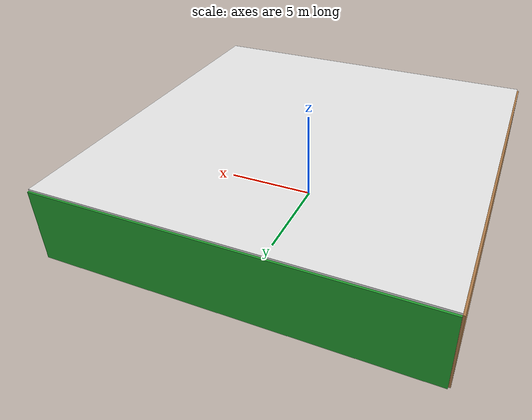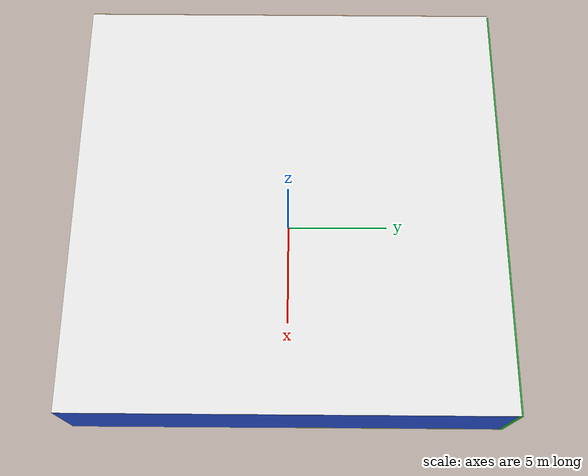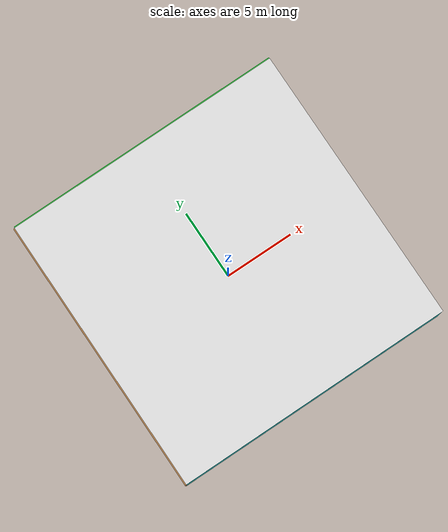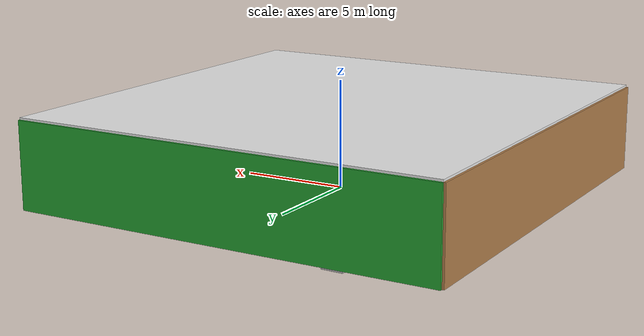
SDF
<sdf version="1.4">
 <world name="default">
  <physics type="ode">
   <max_step_size>0.001</max_step_size>
   <real_time_factor>1</real_time_factor>
   <real_time_update_rate>1000</real_time_update_rate>
   <gravity>0 0 -9.8</gravity>
  </physics>
  <scene><ambient>0.4 0.4 0.4 1</ambient><background>0.7 0.7 0.7 1</background><shadows>1</shadows></scene>
  <model name="Surrounding">
   <static>1</static>
   <link name="Ceiling">
    <collision name="Ceiling_Collision"><geometry><box><size>20 20 0.1</size></box></geometry></collision>
    <visual name="Ceiling_Visual">
     <geometry><box><size>20 20 0.1</size></box></geometry>
     <material>
      <script><uri>file://media/materials/scripts/gazebo.material</uri><name>Gazebo/White</name></script>
     </material>
    </visual>
    <pose>0 0 4.05 0 0 0</pose>
   </link>
   <link name="Wall_South">
    <collision name="Wall_South_Collision">
     <geometry><box><size>20 0 4</size></box></geometry>
     <pose>0 0 2 0 -0 0</pose>
    </collision>
    <visual name="Wall_South_Visual">
     <pose>0 0 2 0 -0 0</pose>
     <geometry><box><size>20 0 4</size></box></geometry>
     <material>
      <script><uri>file://media/materials/scripts/gazebo.material</uri><name>Gazebo/TurquoiseGlow</name></script>
     </material>
    </visual>
    <velocity_decay><linear>0</linear><angular>0</angular></velocity_decay>
    <pose>0 -10 0 0 -0 0</pose>
   </link>
   <link name="Wall_East">
    <collision name="Wall_21_Collision">
     <geometry><box><size>20 0 4</size></box></geometry>
     <pose>0 0 2 0 -0 0</pose>
    </collision>
    <visual name="Wall_21_Visual">
     <pose>0 0 2 0 -0 0</pose>
     <geometry><box><size>20 0 4</size></box></geometry>
     <material>
      <script><uri>file://media/materials/scripts/gazebo.material</uri><name>Gazebo/Blue</name></script>
     </material>
    </visual>
    <velocity_decay><linear>0</linear><angular>0</angular></velocity_decay>
    <pose>10 0 0 0 -0 1.5708</pose>
   </link>
   <link name="Wall_North">
    <collision name="Wall_22_Collision">
     <geometry><box><size>20 0.2 4</size></box></geometry>
     <pose>0 0 2 0 -0 0</pose>
    </collision>
    <visual name="Wall_22_Visual">
     <pose>0 0 2 0 -0 0</pose>
     <geometry><box><size>20 0.2 4</size></box></geometry>
     <material>
      <script><uri>file://media/materials/scripts/gazebo.material</uri><name>Gazebo/Green</name></script>
     </material>
    </visual>
    <velocity_decay><linear>0</linear><angular>0</angular></velocity_decay>
    <pose>0 10 0 0 -0 0</pose>
   </link>
   <link name="Wall_West">
    <collision name="Wall_23_Collision">
     <geometry><box><size>20 0.2 4</size></box></geometry>
     <pose>0 0 2 0 -0 0</pose>
    </collision>
    <visual name="Wall_23_Visual">
     <pose>0 0 2 0 -0 0</pose>
     <geometry><box><size>20 0.2 4</size></box></geometry>
     <material>
      <script><uri>file://media/materials/scripts/gazebo.material</uri><name>Gazebo/WoodPallet</name></script>
     </material>
    </visual>
    <velocity_decay><linear>0</linear><angular>0</angular></velocity_decay>
    <pose>-10 0 0 0 0 -1.5708</pose>
   </link>
   <link name="Ground_link">
    <collision name="collision">
     <pose>0 0 .05 0 -0 0</pose>
     <geometry><box><size>20 20 0.1</size></box></geometry>
    </collision>
    <visual name="visual">
     <pose>0 0 .05 0 -0 0</pose>
     <geometry><box><size>20 20 0.1</size></box></geometry>
     <material>
      <script><uri>file://media/materials/scripts/gazebo.material</uri><name>Gazebo/Yellow</name></script>
     </material>
    </visual>
   </link>
   <static>1</static>
  </model>
  <spherical_coordinates>
   <surface_model>EARTH_WGS84</surface_model>
   <latitude_deg>0</latitude_deg>
   <longitude_deg>0</longitude_deg>
   <elevation>0</elevation>
   <heading_deg>0</heading_deg>
  </spherical_coordinates>
  <light name="lightball_0" type="diffuse">
   <diffuse>0.8 0.8 0.8 1</diffuse>
   <specular>0.2 0.2 0.2 1</specular>
   <attenuation>
    <range>100</range>
    <constant>0.7</constant>
    <linear>0.01</linear>
    <quadratic>0.001</quadratic>
   </attenuation>
   <direction>-0.5 0.1 -0.9</direction>
   <pose>-3.88722219858 -6.5315693998 1.63107794502 0 0 0</pose>
  </light>
  <light name="lightball_1" type="diffuse">
   <diffuse>0.8 0.8 0.8 1</diffuse>
   <specular>0.2 0.2 0.2 1</specular>
   <attenuation>
    <range>100</range>
    <constant>0.7</constant>
    <linear>0.01</linear>
    <quadratic>0.001</quadratic>
   </attenuation>
   <direction>-0.5 0.1 -0.9</direction>
   <pose>-8.23097935385 -2.60913786617 1.13943941932 0 0 0</pose>
  </light>
  <light name="lightball_2" type="diffuse">
   <diffuse>0.8 0.8 0.8 1</diffuse>
   <specular>0.2 0.2 0.2 1</specular>
   <attenuation>
    <range>100</range>
    <constant>0.7</constant>
    <linear>0.01</linear>
    <quadratic>0.001</quadratic>
   </attenuation>
   <direction>-0.5 0.1 -0.9</direction>
   <pose>-3.55734389306 -7.58928140078 3.76022208137 0 0 0</pose>
  </light>
  <light name="lightball_3" type="diffuse">
   <diffuse>0.8 0.8 0.8 1</diffuse>
   <specular>0.2 0.2 0.2 1</specular>
   <attenuation>
    <range>100</range>
    <constant>0.7</constant>
    <linear>0.01</linear>
    <quadratic>0.001</quadratic>
   </attenuation>
   <direction>-0.5 0.1 -0.9</direction>
   <pose>-7.17427061067 2.19996140409 0.623505345992 0 0 0</pose>
  </light>
  <light name="lightball_4" type="diffuse">
   <diffuse>0.8 0.8 0.8 1</diffuse>
   <specular>0.2 0.2 0.2 1</specular>
   <attenuation>
    <range>100</range>
    <constant>0.7</constant>
    <linear>0.01</linear>
    <quadratic>0.001</quadratic>
   </attenuation>
   <direction>-0.5 0.1 -0.9</direction>
   <pose>-8.75523498563 -3.24816698868 3.28929953821 0 0 0</pose>
  </light>
  <light name="lightball_5" type="diffuse">
   <diffuse>0.8 0.8 0.8 1</diffuse>
   <specular>0.2 0.2 0.2 1</specular>
   <attenuation>
    <range>100</range>
    <constant>0.7</constant>
    <linear>0.01</linear>
    <quadratic>0.001</quadratic>
   </attenuation>
   <direction>-0.5 0.1 -0.9</direction>
   <pose>5.07022786073 -2.10813825873 1.23658434839 0 0 0</pose>
  </light>
  <light name="lightball_6" type="diffuse">
   <diffuse>0.8 0.8 0.8 1</diffuse>
   <specular>0.2 0.2 0.2 1</specular>
   <attenuation>
    <range>100</range>
    <constant>0.7</constant>
    <linear>0.01</linear>
    <quadratic>0.001</quadratic>
   </attenuation>
   <direction>-0.5 0.1 -0.9</direction>
   <pose>6.36210126663 4.40048519354 0.628059957882 0 0 0</pose>
  </light>
  <light name="lightball_7" type="diffuse">
   <diffuse>0.8 0.8 0.8 1</diffuse>
   <specular>0.2 0.2 0.2 1</specular>
   <attenuation>
    <range>100</range>
    <constant>0.7</constant>
    <linear>0.01</linear>
    <quadratic>0.001</quadratic>
   </attenuation>
   <direction>-0.5 0.1 -0.9</direction>
   <pose>-4.73407268727 0.929961220434 3.20418013856 0 0 0</pose>
  </light>
  <light name="lightball_8" type="diffuse">
   <diffuse>0.8 0.8 0.8 1</diffuse>
   <specular>0.2 0.2 0.2 1</specular>
   <attenuation>
    <range>100</range>
    <constant>0.7</constant>
    <linear>0.01</linear>
    <quadratic>0.001</quadratic>
   </attenuation>
   <direction>-0.5 0.1 -0.9</direction>
   <pose>-6.47356999139 -7.42653297091 1.36591871655 0 0 0</pose>
  </light>
  <include><uri>model://table</uri><pose>-4.77833895523 0.976718285036 0 0 0 2.60712222308</pose></include>
  <include>
   <uri>model://textured_shapes</uri>
   <pose>-4.87552046809 7.02147100975 0 0 0 3.1212507897</pose>
  </include>
  <include>
   <uri>model://construction_cone</uri>
   <pose>0.736983328862 -7.74430813044 0 0 0 0.677217549557</pose>
  </include>
  <include><uri>model://cabinet</uri><pose>1.10687424251 -5.07407914876 0 0 0 0.280234377804</pose></include>
  <include><uri>model://cabinet</uri><pose>1.51327986307 -0.756793616975 0 0 0 2.95196398691</pose></include>
  <include><uri>model://table</uri><pose>1.18096958549 4.14490454903 0 0 0 1.38503612152</pose></include>
 </world>
</sdf>

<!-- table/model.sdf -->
<sdf version="1.5">
  <model name="table">
    <static>true</static>
    <link name="link">
      <collision name="surface">
        <pose>0 0 1.0 0 0 0</pose>
        <geometry>
          <box>
            <size>1.5 0.8 0.03</size>
          </box>
        </geometry>
        <surface>
          <friction>
            <ode>
              <mu>0.6</mu>
              <mu2>0.6</mu2>
            </ode>
          </friction>
        </surface>
      </collision>
      <visual name="visual1">
        <pose>0 0 1.0 0 0 0</pose>
        <geometry>
          <box>
            <size>1.5 0.8 0.03</size>
          </box>
        </geometry>
        <material>
          <script>
            <uri>model://media/materials/scripts/gazebo.material</uri>
            <name>Gazebo/Wood</name>
          </script>
        </material>
      </visual>
      <collision name="front_left_leg">
        <pose>0.68 0.38 0.5 0 0 0</pose>
        <geometry>
          <cylinder>
            <radius>0.02</radius>
            <length>1.0</length>
          </cylinder>
        </geometry>
      </collision>
      <visual name="front_left_leg">
        <pose>0.68 0.38 0.5 0 0 0</pose>
        <geometry>
          <cylinder>
            <radius>0.02</radius>
            <length>1.0</length>
          </cylinder>
        </geometry>
        <material>
          <script>
            <uri>model://media/materials/scripts/gazebo.material</uri>
            <name>Gazebo/Grey</name>
          </script>
        </material>
      </visual>
      <collision name="front_right_leg">
        <pose>0.68 -0.38 0.5 0 0 0</pose>
        <geometry>
          <cylinder>
            <radius>0.02</radius>
            <length>1.0</length>
          </cylinder>
        </geometry>
      </collision>
      <visual name="front_right_leg">
        <pose>0.68 -0.38 0.5 0 0 0</pose>
        <geometry>
          <cylinder>
            <radius>0.02</radius>
            <length>1.0</length>
          </cylinder>
        </geometry>
        <material>
          <script>
            <uri>model://media/materials/scripts/gazebo.material</uri>
            <name>Gazebo/Grey</name>
          </script>
        </material>
      </visual>
      <collision name="back_right_leg">
        <pose>-0.68 -0.38 0.5 0 0 0</pose>
        <geometry>
          <cylinder>
            <radius>0.02</radius>
            <length>1.0</length>
          </cylinder>
        </geometry>
      </collision>
      <visual name="back_right_leg">
        <pose>-0.68 -0.38 0.5 0 0 0</pose>
        <geometry>
          <cylinder>
            <radius>0.02</radius>
            <length>1.0</length>
          </cylinder>
        </geometry>
        <material>
          <script>
            <uri>model://media/materials/scripts/gazebo.material</uri>
            <name>Gazebo/Grey</name>
          </script>
        </material>
      </visual>
      <collision name="back_left_leg">
        <pose>-0.68 0.38 0.5 0 0 0</pose>
        <geometry>
          <cylinder>
            <radius>0.02</radius>
            <length>1.0</length>
          </cylinder>
        </geometry>
      </collision>
      <visual name="back_left_leg">
        <pose>-0.68 0.38 0.5 0 0 0</pose>
        <geometry>
          <cylinder>
            <radius>0.02</radius>
            <length>1.0</length>
          </cylinder>
        </geometry>
        <material>
          <script>
            <uri>model://media/materials/scripts/gazebo.material</uri>
            <name>Gazebo/Grey</name>
          </script>
        </material>
      </visual>
    </link>
  </model>
</sdf>

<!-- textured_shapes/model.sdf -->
<sdf version="1.6">
  <model name="textured_shapes">
    <pose>0 0 0.5 0 0 0</pose>
    <link name="box">
      <pose>0 -1.5 0 0 0 0</pose>
      <collision name="collision">
        <geometry>
          <box>
            <size>1 1 1</size>
          </box>
        </geometry>
      </collision>
      <visual name="visual">
        <geometry>
          <box>
            <size>1 1 1</size>
          </box>
        </geometry>
        <material>
          <script>
            <uri>model://../model_source/models/textured_shapes/materials/scripts</uri>
            <uri>model://../model_source/models/textured_shapes/materials/textures</uri>
            <name>TexturedShape/Squares</name>
          </script>
        </material>
      </visual>
    </link>
    <link name="sphere">
      <collision name="collision">
        <geometry>
          <sphere>
            <radius>0.5</radius>
          </sphere>
        </geometry>
      </collision>
      <visual name="visual">
        <geometry>
          <sphere>
            <radius>0.5</radius>
          </sphere>
        </geometry>
        <material>
          <script>
            <uri>model://../model_source/models/textured_shapes/materials/scripts</uri>
            <uri>model://../model_source/models/textured_shapes/materials/textures</uri>
            <name>TexturedShape/Squares</name>
          </script>
        </material>
      </visual>
    </link>
    <link name="cylinder">
      <pose>0 1.5 0 0 0 0</pose>
      <collision name="collision">
        <geometry>
          <cylinder>
            <radius>0.5</radius>
            <length>1</length>
          </cylinder>
        </geometry>
      </collision>
      <visual name="visual">
        <geometry>
          <cylinder>
            <radius>0.5</radius>
            <length>1</length>
          </cylinder>
        </geometry>
        <material>
          <script>
            <uri>model://../model_source/models/textured_shapes/materials/scripts</uri>
            <uri>model://../model_source/models/textured_shapes/materials/textures</uri>
            <name>TexturedShape/Squares</name>
          </script>
        </material>
      </visual>
    </link>
  </model>
</sdf>

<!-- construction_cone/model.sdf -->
<sdf version="1.5">
  <model name="Construction Cone">
    <link name="link">
      <collision name="collision">
        <geometry>
          <mesh>
            <scale>10 10 10</scale>
            <uri>file://isr-testbed/construction_cone/meshes/construction_cone.dae</uri>
          </mesh>
        </geometry>
      </collision>
      <visual name="visual">
        <geometry>
          <mesh>
            <scale>10 10 10</scale>
            <uri>file://isr-testbed/construction_cone/meshes/construction_cone.dae</uri>
          </mesh>
        </geometry>
      </visual>
    </link>
  </model>
</sdf>

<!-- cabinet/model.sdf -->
<sdf version="1.5">
  <model name="cabinet">
    <static>true</static>
    <link name="cabinet_bottom_plate">
      <inertial>
        <pose>0 0 -1 0 0 0</pose>
        <inertia>
          <ixx>2.050000</ixx>
          <ixy>0</ixy>
          <ixz>0</ixz>
          <iyy>2.050000</iyy>
          <iyz>0</iyz>
          <izz>2.050000</izz>
        </inertia>
        <mass>25.000000</mass>
      </inertial>
      <collision name="cabinet_bottom_plate_geom">
        <pose>0 0 0.010000 0 0 0</pose>
        <geometry>
          <box>
            <size>0.450000 0.450000 0.020000</size>
          </box>
        </geometry>
      </collision>
      <visual name="cabinet_bottom_plate_geom_visual">
        <pose>0 0 0.010000 0 0 0</pose>
        <geometry>
          <box>
            <size>0.450000 0.450000 0.020000</size>
          </box>
        </geometry>
        <material>
          <script>
            <uri>model://media/materials/scripts/gazebo.material</uri>
            <name>Gazebo/Wood</name>
          </script>
        </material>
      </visual>
      <collision name="cabinet_bottom_plate_geom_cabinet_back_plate">
        <pose>0.235000 0 0.510000 0 0 0</pose>
        <geometry>
          <box>
            <size>0.020000 0.450000 1.020000</size>
          </box>
        </geometry>
      </collision>
      <visual name="cabinet_bottom_plate_geom_cabinet_back_plate_visual">
        <pose>0.235000 0 0.510000 0 0 0</pose>
        <geometry>
          <box>
            <size>0.020000 0.450000 1.020000</size>
          </box>
        </geometry>
        <material>
          <script>
            <uri>model://media/materials/scripts/gazebo.material</uri>
            <name>Gazebo/Wood</name>
          </script>
        </material>
      </visual>
      <collision name="cabinet_bottom_plate_geom_cabinet_left_plate">
        <pose>0 0.235000 0.510000 0 0 0</pose>
        <geometry>
          <box>
            <size>0.450000 0.020000 1.020000</size>
          </box>
        </geometry>
      </collision>
      <visual name="cabinet_bottom_plate_geom_cabinet_left_plate_visual">
        <pose>0 0.235000 0.510000 0 0 0</pose>
        <geometry>
          <box>
            <size>0.450000 0.020000 1.020000</size>
          </box>
        </geometry>
        <material>
          <script>
            <uri>model://media/materials/scripts/gazebo.material</uri>
            <name>Gazebo/Wood</name>
          </script>
        </material>
      </visual>
      <collision name="cabinet_bottom_plate_geom_cabinet_middle_plate">
        <pose>0 0 0.510000 0 0 0</pose>
        <geometry>
          <box>
            <size>0.450000 0.450000 0.020000</size>
          </box>
        </geometry>
      </collision>
      <visual name="cabinet_bottom_plate_geom_cabinet_middle_plate_visual">
        <pose>0 0 0.510000 0 0 0</pose>
        <geometry>
          <box>
            <size>0.450000 0.450000 0.020000</size>
          </box>
        </geometry>
        <material>
          <script>
            <uri>model://media/materials/scripts/gazebo.material</uri>
            <name>Gazebo/Wood</name>
          </script>
        </material>
      </visual>
      <collision name="cabinet_bottom_plate_geom_cabinet_right_plate">
        <pose>0 -0.235000 0.510000 0 0 0</pose>
        <geometry>
          <box>
            <size>0.450000 0.020000 1.020000</size>
          </box>
        </geometry>
      </collision>
      <visual name="cabinet_bottom_plate_geom_cabinet_right_plate_visual">
        <pose>0 -0.235000 0.510000 0 0 0</pose>
        <geometry>
          <box>
            <size>0.450000 0.020000 1.020000</size>
          </box>
        </geometry>
        <material>
          <script>
            <uri>model://media/materials/scripts/gazebo.material</uri>
            <name>Gazebo/Wood</name>
          </script>
        </material>
      </visual>
      <collision name="cabinet_bottom_plate_geom_cabinet_top_plate">
        <pose>0 0 1.010000 0 0 0</pose>
        <geometry>
          <box>
            <size>0.450000 0.450000 0.020000</size>
          </box>
        </geometry>
      </collision>
      <visual name="cabinet_bottom_plate_geom_cabinet_top_plate_visual">
        <pose>0 0 1.010000 0 0 0</pose>
        <geometry>
          <box>
            <size>0.450000 0.450000 0.020000</size>
          </box>
        </geometry>
        <material>
          <script>
            <uri>model://media/materials/scripts/gazebo.material</uri>
            <name>Gazebo/Wood</name>
          </script>
        </material>
      </visual>
    </link>
  </model>
</sdf>
